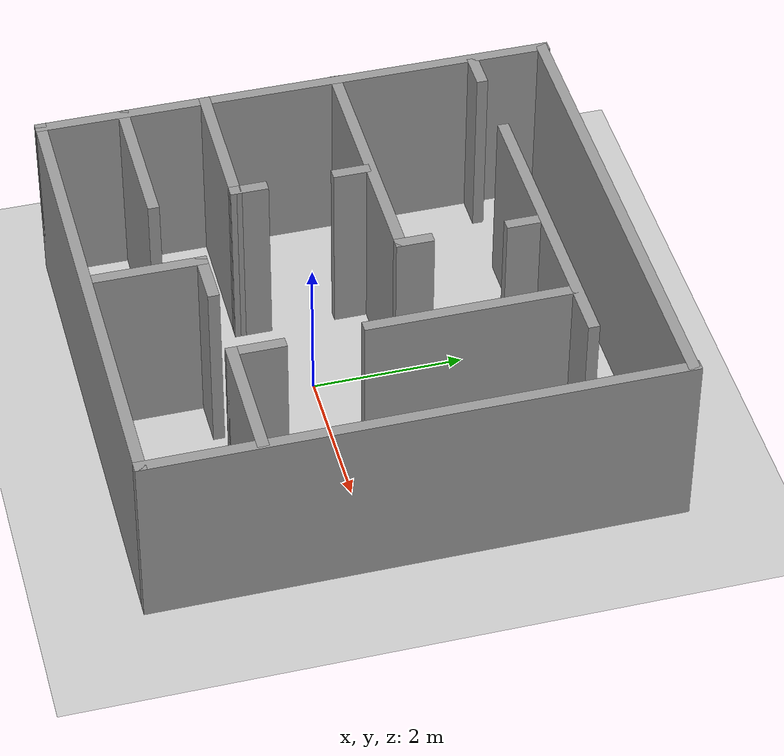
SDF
<sdf version="1.7">
 <world name="default">
  <light name="sun" type="directional">
   <pose>0 0 10 0 -0 0</pose>
   <diffuse>0.8 0.8 0.8 1</diffuse>
   <specular>0.2 0.2 0.2 1</specular>
   <attenuation>
    <range>1000</range>
    <constant>0.9</constant>
    <linear>0.01</linear>
    <quadratic>0.001</quadratic>
   </attenuation>
   <direction>-0.5 0.1 -0.9</direction>
   <spot><inner_angle>0</inner_angle><outer_angle>0</outer_angle><falloff>0</falloff></spot>
  </light>
  <model name="ground_plane">
   <static>1</static>
   <link name="link">
    <collision name="collision">
     <geometry><plane><normal>0 0 1</normal><size>100 100</size></plane></geometry>
     <surface>
      <contact><collide_bitmask>65535</collide_bitmask></contact>
      <friction><ode><mu>100</mu><mu2>50</mu2></ode></friction>
     </surface>
    </collision>
    <visual name="visual">
     <cast_shadows>0</cast_shadows>
     <geometry><plane><normal>0 0 1</normal><size>100 100</size></plane></geometry>
     <material>
      <script><uri>file://media/materials/scripts/gazebo.material</uri><name>Gazebo/Grey</name></script>
     </material>
    </visual>
   </link>
  </model>
  <gravity>0 0 -9.8</gravity>
  <magnetic_field>6e-06 2.3e-05 -4.2e-05</magnetic_field>
  <atmosphere type="adiabatic"/>
  <physics type="ode">
   <max_step_size>0.001</max_step_size>
   <real_time_factor>1</real_time_factor>
   <real_time_update_rate>1000</real_time_update_rate>
  </physics>
  <scene><ambient>0.4 0.4 0.4 1</ambient><background>0.7 0.7 0.7 1</background><shadows>1</shadows></scene>
  <spherical_coordinates>
   <surface_model>EARTH_WGS84</surface_model>
   <latitude_deg>0</latitude_deg>
   <longitude_deg>0</longitude_deg>
   <elevation>0</elevation>
   <heading_deg>0</heading_deg>
  </spherical_coordinates>
  <model name="mazet">
   <pose>0.102685 0.532986 0 0 -0 0</pose>
   <link name="Wall_11">
    <collision name="Wall_11_Collision">
     <geometry><box><size>4 0.15 2.5</size></box></geometry>
     <pose>0 0 1.25 0 -0 0</pose>
    </collision>
    <visual name="Wall_11_Visual">
     <pose>0 0 1.25 0 -0 0</pose>
     <geometry><box><size>4 0.15 2.5</size></box></geometry>
     <material>
      <script><uri>file://media/materials/scripts/gazebo.material</uri><name>Gazebo/Grey</name></script>
      <ambient>1 1 1 1</ambient>
     </material>
     <meta><layer>0</layer></meta>
    </visual>
    <pose>0.246126 2.44667 0 0 -0 0</pose>
   </link>
   <link name="Wall_15">
    <collision name="Wall_15_Collision">
     <geometry><box><size>3.5 0.15 2.5</size></box></geometry>
     <pose>0 0 1.25 0 -0 0</pose>
    </collision>
    <visual name="Wall_15_Visual">
     <pose>0 0 1.25 0 -0 0</pose>
     <geometry><box><size>3.5 0.15 2.5</size></box></geometry>
     <material>
      <script><uri>file://media/materials/scripts/gazebo.material</uri><name>Gazebo/Grey</name></script>
      <ambient>1 1 1 1</ambient>
     </material>
     <meta><layer>0</layer></meta>
    </visual>
    <pose>-1.52011 0.552113 0 0 -0 0</pose>
   </link>
   <link name="Wall_17">
    <collision name="Wall_17_Collision">
     <geometry><box><size>0.5 0.15 2.5</size></box></geometry>
     <pose>0 0 1.25 0 -0 0</pose>
    </collision>
    <visual name="Wall_17_Visual">
     <pose>0 0 1.25 0 -0 0</pose>
     <geometry><box><size>0.5 0.15 2.5</size></box></geometry>
     <material>
      <script><uri>file://media/materials/scripts/gazebo.material</uri><name>Gazebo/Grey</name></script>
      <ambient>1 1 1 1</ambient>
     </material>
     <meta><layer>0</layer></meta>
    </visual>
    <pose>0.154893 2.17711 0 0 -0 -1.5708</pose>
   </link>
   <link name="Wall_19">
    <collision name="Wall_19_Collision">
     <geometry><box><size>0.5 0.15 2.5</size></box></geometry>
     <pose>0 0 1.25 0 -0 0</pose>
    </collision>
    <visual name="Wall_19_Visual">
     <pose>0 0 1.25 0 -0 0</pose>
     <geometry><box><size>0.5 0.15 2.5</size></box></geometry>
     <material>
      <script><uri>file://media/materials/scripts/gazebo.material</uri><name>Gazebo/Grey</name></script>
      <ambient>1 1 1 1</ambient>
     </material>
     <meta><layer>0</layer></meta>
    </visual>
    <pose>0.154893 0.727113 0 0 -0 -1.5708</pose>
   </link>
   <link name="Wall_2">
    <collision name="Wall_2_Collision">
     <geometry><box><size>6.5 0.15 2.5</size></box></geometry>
     <pose>0 0 1.25 0 -0 0</pose>
    </collision>
    <visual name="Wall_2_Visual">
     <pose>0 0 1.25 0 -0 0</pose>
     <geometry><box><size>6.5 0.15 2.5</size></box></geometry>
     <material>
      <script><uri>file://media/materials/scripts/gazebo.material</uri><name>Gazebo/Grey</name></script>
      <ambient>1 1 1 1</ambient>
     </material>
     <meta><layer>0</layer></meta>
    </visual>
    <pose>0.002616 3.40751 0 0 -0 3.14159</pose>
   </link>
   <link name="Wall_22">
    <collision name="Wall_22_Collision">
     <geometry><box><size>2.75 0.15 2.5</size></box></geometry>
     <pose>0 0 1.25 0 -0 0</pose>
    </collision>
    <visual name="Wall_22_Visual">
     <pose>0 0 1.25 0 -0 0</pose>
     <geometry><box><size>2.75 0.15 2.5</size></box></geometry>
     <material>
      <script><uri>file://media/materials/scripts/gazebo.material</uri><name>Gazebo/Grey</name></script>
      <ambient>1 1 1 1</ambient>
     </material>
     <meta><layer>0</layer></meta>
    </visual>
    <pose>1.53035 1.08454 0 0 -0 -1.5708</pose>
   </link>
   <link name="Wall_25">
    <collision name="Wall_25_Collision">
     <geometry><box><size>1.75 0.15 2.5</size></box></geometry>
     <pose>0 0 1.25 0 -0 0</pose>
    </collision>
    <visual name="Wall_25_Visual">
     <pose>0 0 1.25 0 -0 0</pose>
     <geometry><box><size>1.75 0.15 2.5</size></box></geometry>
     <material>
      <script><uri>file://media/materials/scripts/gazebo.material</uri><name>Gazebo/Grey</name></script>
      <ambient>1 1 1 1</ambient>
     </material>
     <meta><layer>0</layer></meta>
    </visual>
    <pose>2.36533 -1.9451 0 0 -0 0</pose>
   </link>
   <link name="Wall_27">
    <collision name="Wall_27_Collision">
     <geometry><box><size>0.75 0.15 2.5</size></box></geometry>
     <pose>0 0 1.25 0 -0 0</pose>
    </collision>
    <visual name="Wall_27_Visual">
     <pose>0 0 1.25 0 -0 0</pose>
     <geometry><box><size>0.75 0.15 2.5</size></box></geometry>
     <material>
      <script><uri>file://media/materials/scripts/gazebo.material</uri><name>Gazebo/Grey</name></script>
      <ambient>1 1 1 1</ambient>
     </material>
     <meta><layer>0</layer></meta>
    </visual>
    <pose>1.56533 -1.6451 0 0 -0 1.5708</pose>
   </link>
   <link name="Wall_29">
    <collision name="Wall_29_Collision">
     <geometry><box><size>2 0.15 2.5</size></box></geometry>
     <pose>0 0 1.25 0 -0 0</pose>
    </collision>
    <visual name="Wall_29_Visual">
     <pose>0 0 1.25 0 -0 0</pose>
     <geometry><box><size>2 0.15 2.5</size></box></geometry>
     <material>
      <script><uri>file://media/materials/scripts/gazebo.material</uri><name>Gazebo/Grey</name></script>
      <ambient>1 1 1 1</ambient>
     </material>
     <meta><layer>0</layer></meta>
    </visual>
    <pose>-2.26415 -1.23517 0 0 -0 -0.0094</pose>
   </link>
   <link name="Wall_3">
    <collision name="Wall_3_Collision">
     <geometry><box><size>7 0.15 2.5</size></box></geometry>
     <pose>0 0 1.25 0 -0 0</pose>
    </collision>
    <visual name="Wall_3_Visual">
     <pose>0 0 1.25 0 -0 0</pose>
     <geometry><box><size>7 0.15 2.5</size></box></geometry>
     <material>
      <script><uri>file://media/materials/scripts/gazebo.material</uri><name>Gazebo/Grey</name></script>
      <ambient>1 1 1 1</ambient>
     </material>
     <meta><layer>0</layer></meta>
    </visual>
    <pose>-3.18987 0 0 0 -0 -1.5708</pose>
   </link>
   <link name="Wall_34">
    <collision name="Wall_34_Collision">
     <geometry><box><size>0.5 0.15 2.5</size></box></geometry>
     <pose>0 0 1.25 0 -0 0</pose>
    </collision>
    <visual name="Wall_34_Visual">
     <pose>0 0 1.25 0 -0 0</pose>
     <geometry><box><size>0.5 0.15 2.5</size></box></geometry>
     <material>
      <script><uri>file://media/materials/scripts/gazebo.material</uri><name>Gazebo/Grey</name></script>
      <ambient>1 1 1 1</ambient>
     </material>
     <meta><layer>0</layer></meta>
    </visual>
    <pose>-1.33915 0.289831 0 0 -0 1.5708</pose>
   </link>
   <link name="Wall_36">
    <collision name="Wall_36_Collision">
     <geometry><box><size>0.5 0.15 2.5</size></box></geometry>
     <pose>0 0 1.25 0 -0 0</pose>
    </collision>
    <visual name="Wall_36_Visual">
     <pose>0 0 1.25 0 -0 0</pose>
     <geometry><box><size>0.5 0.15 2.5</size></box></geometry>
     <material>
      <script><uri>file://media/materials/scripts/gazebo.material</uri><name>Gazebo/Grey</name></script>
      <ambient>1 1 1 1</ambient>
     </material>
     <meta><layer>0</layer></meta>
    </visual>
    <pose>-1.33915 -1.06886 0 0 -0 1.5708</pose>
   </link>
   <link name="Wall_40">
    <collision name="Wall_40_Collision">
     <geometry><box><size>0.75 0.15 2.5</size></box></geometry>
     <pose>0 0 1.25 0 -0 0</pose>
    </collision>
    <visual name="Wall_40_Visual">
     <pose>0 0 1.25 0 -0 0</pose>
     <geometry><box><size>0.75 0.15 2.5</size></box></geometry>
     <material>
      <script><uri>file://media/materials/scripts/gazebo.material</uri><name>Gazebo/Grey</name></script>
      <ambient>1 1 1 1</ambient>
     </material>
     <meta><layer>0</layer></meta>
    </visual>
    <pose>0.165329 -1.9451 0 0 -0 3.14159</pose>
   </link>
   <link name="Wall_43">
    <collision name="Wall_43_Collision">
     <geometry><box><size>1.5 0.15 2.5</size></box></geometry>
     <pose>0 0 1.25 0 -0 0</pose>
    </collision>
    <visual name="Wall_43_Visual">
     <pose>0 0 1.25 0 -0 0</pose>
     <geometry><box><size>1.5 0.15 2.5</size></box></geometry>
     <material>
      <script><uri>file://media/materials/scripts/gazebo.material</uri><name>Gazebo/Grey</name></script>
      <ambient>1 1 1 1</ambient>
     </material>
     <meta><layer>0</layer></meta>
    </visual>
    <pose>-0.134671 -2.6201 0 0 -0 -1.5708</pose>
   </link>
   <link name="Wall_46">
    <collision name="Wall_46_Collision">
     <geometry><box><size>2 0.15 2.5</size></box></geometry>
     <pose>0 0 1.25 0 -0 0</pose>
    </collision>
    <visual name="Wall_46_Visual">
     <pose>0 0 1.25 0 -0 0</pose>
     <geometry><box><size>2 0.15 2.5</size></box></geometry>
     <material>
      <script><uri>file://media/materials/scripts/gazebo.material</uri><name>Gazebo/Grey</name></script>
      <ambient>1 1 1 1</ambient>
     </material>
     <meta><layer>0</layer></meta>
    </visual>
    <pose>-2.25764 -2.32633 0 0 -0 0</pose>
   </link>
   <link name="Wall_5">
    <collision name="Wall_5_Collision">
     <geometry><box><size>6.53498 0.15 2.5</size></box></geometry>
     <pose>0 0 1.25 0 -0 0</pose>
    </collision>
    <visual name="Wall_5_Visual">
     <pose>0 0 1.25 0 -0 0</pose>
     <geometry><box><size>6.53498 0.15 2.5</size></box></geometry>
     <material>
      <script><uri>file://media/materials/scripts/gazebo.material</uri><name>Gazebo/Grey</name></script>
      <ambient>1 1 1 1</ambient>
     </material>
     <meta><layer>0</layer></meta>
    </visual>
    <pose>0.002616 -3.425 0 0 -0 0</pose>
   </link>
   <link name="Wall_6">
    <collision name="Wall_6_Collision">
     <geometry><box><size>7 0.15 2.5</size></box></geometry>
     <pose>0 0 1.25 0 -0 0</pose>
    </collision>
    <visual name="Wall_6_Visual">
     <pose>0 0 1.25 0 -0 0</pose>
     <geometry><box><size>7 0.15 2.5</size></box></geometry>
     <material>
      <script><uri>file://media/materials/scripts/gazebo.material</uri><name>Gazebo/Grey</name></script>
      <ambient>1 1 1 1</ambient>
     </material>
     <meta><layer>0</layer></meta>
    </visual>
    <pose>3.19511 0 0 0 -0 1.5708</pose>
   </link>
   <link name="Wall_8">
    <collision name="Wall_8_Collision">
     <geometry><box><size>0.5 0.15 2.5</size></box></geometry>
     <pose>0 0 1.25 0 -0 0</pose>
    </collision>
    <visual name="Wall_8_Visual">
     <pose>0 0 1.25 0 -0 0</pose>
     <geometry><box><size>0.5 0.15 2.5</size></box></geometry>
     <material>
      <script><uri>file://media/materials/scripts/gazebo.material</uri><name>Gazebo/Grey</name></script>
      <ambient>1 1 1 1</ambient>
     </material>
     <meta><layer>0</layer></meta>
    </visual>
    <pose>-2.92346 2.43146 0 0 -0 0</pose>
   </link>
   <static>1</static>
  </model>
 </world>
</sdf>
